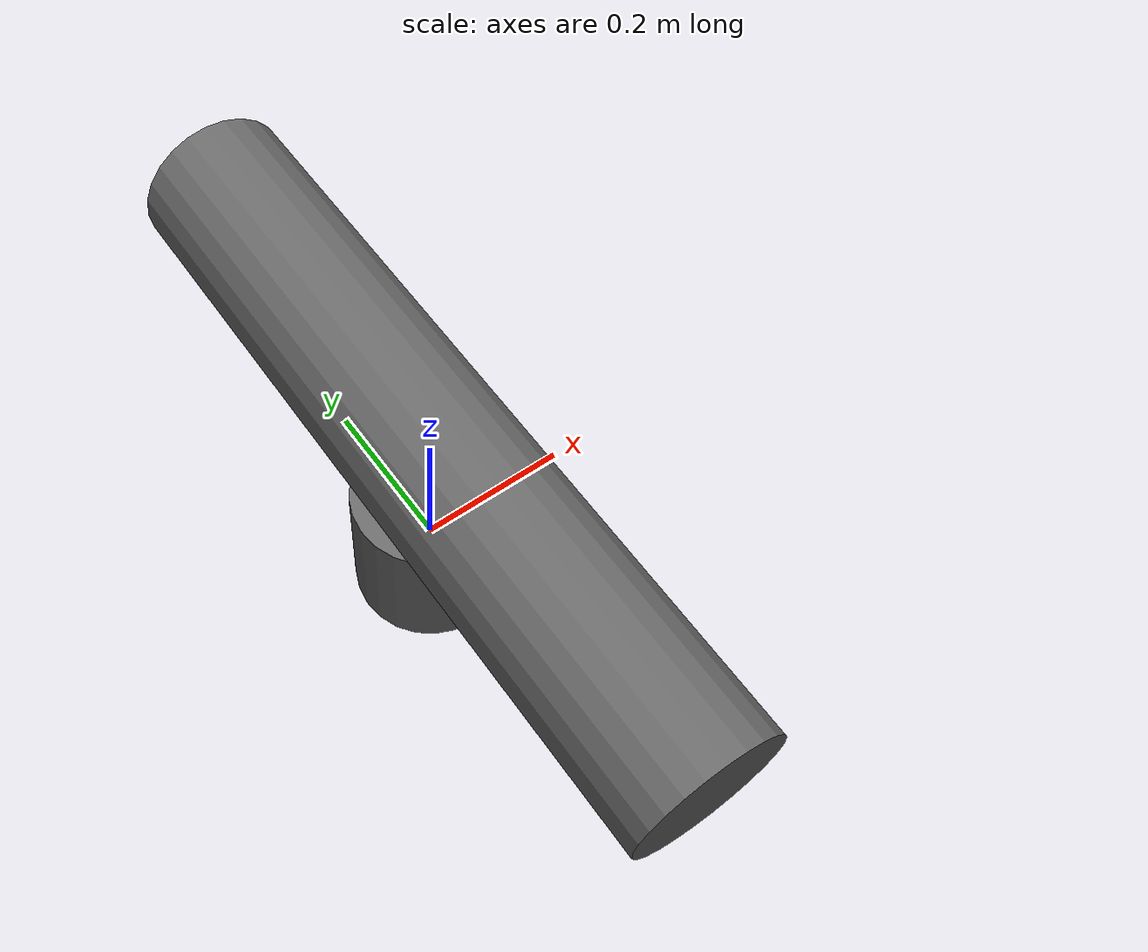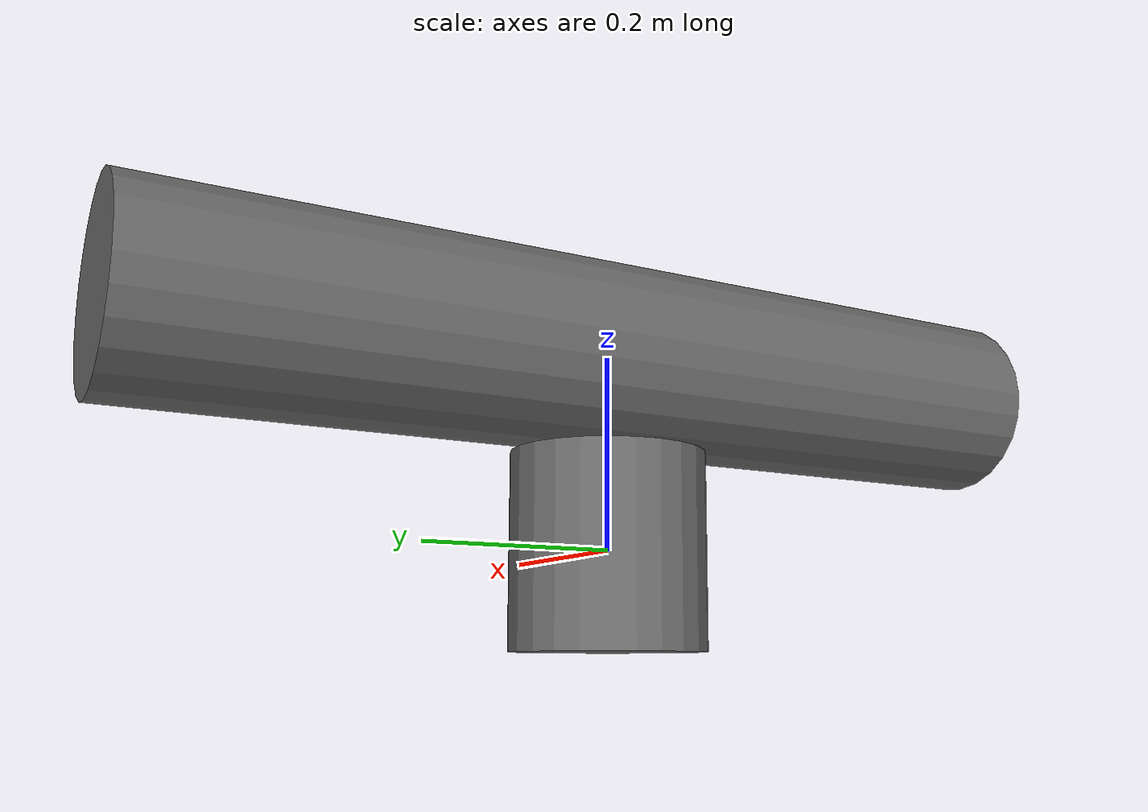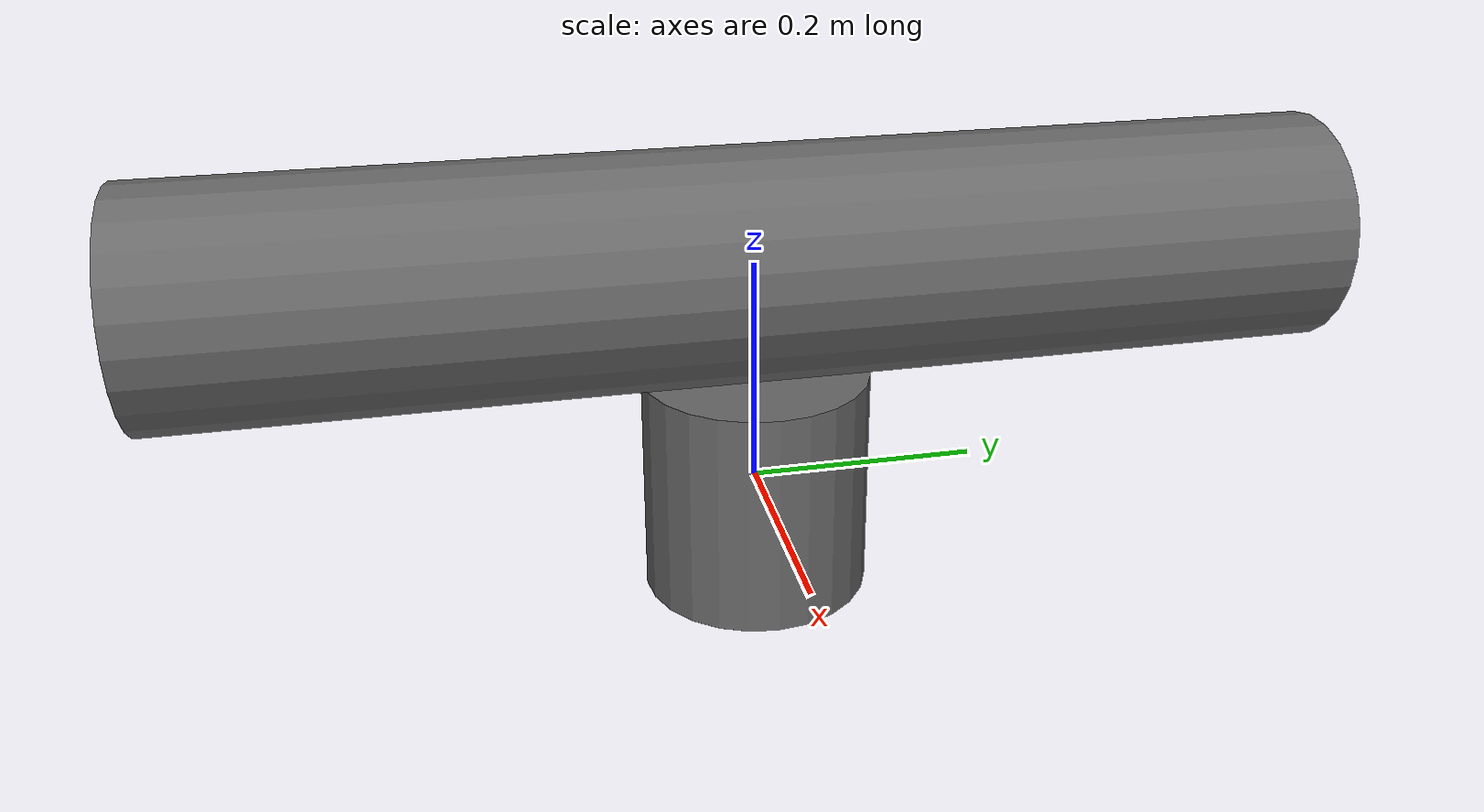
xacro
<?xml version="1.0"?>
<robot name="test" xmlns:xacro="http://www.ros.org/wiki/xacro">
    <link name="world"/>
    <joint name="base_joint" type="fixed">
      <origin rpy="0 0 0" xyz="0 0 0"/>
      <parent link="world"/>
      <child link="base_link"/>
    </joint>
    <link name="base_link">
      <inertial>
        <mass value="0.01"/>
        <origin xyz="0 0 0"/>
        <inertia ixx="0.001" ixy="0.0" ixz="0.0" iyy="0.001" iyz="0.0" izz="0.001"/>
      </inertial>
      <visual>
        <origin rpy="0 0 0" xyz="0 0 0"/>
        <geometry>
          <cylinder length="0.2" radius="0.1"/>
        </geometry>
        <material name="DarkGrey">
          <color rgba="0.4 0.4 0.4 1.0"/>
        </material>
      </visual>
      <collision>
        <origin rpy="0 0 0" xyz="0 0 0"/>
        <geometry>
          <cylinder length="1" radius="0.1"/>
        </geometry>
      </collision>
    </link>
    <joint name="test_joint" type="revolute">
      <origin rpy="-1.57079632679 0 0" xyz="0 0 0.2"/>
      <parent link="base_link"/>
      <child link="link1"/>
      <limit effort="0.1" lower="-3.14159265359" upper="3.14159265359" velocity="0.2"/>
    </joint>
    <link name="link1">
      <inertial>
        <mass value="0.01"/>
        <origin xyz="0 0 0"/>
        <inertia ixx="0.001" ixy="0.0" ixz="0.0" iyy="0.001" iyz="0.0" izz="0.001"/>
      </inertial>
      <visual>
        <origin rpy="0 0 0" xyz="0 0 0"/>
        <geometry>
          <cylinder length="1" radius="0.1"/>
        </geometry>
        <material name="DarkGrey">
          <color rgba="0.4 0.4 0.4 1.0"/>
        </material>
      </visual>
      <collision>
        <origin rpy="0 0 0" xyz="0 0 0"/>
        <geometry>
          <cylinder length="1" radius="0.1"/>
        </geometry>
      </collision>
    </link>

    <ros2_control name="test_amc_motor_actuator" type="actuator">
        <hardware>
            <plugin>amc_motor_actuator</plugin>
        </hardware>
        <joint name="test_joint">
            <command_interface name="position">
                <param name="min">-100</param>
                <param name="max">100</param>
            </command_interface>
            <command_interface name="velocity"/>
            <command_interface name="acceleration"/>
            <command_interface name="control_state"/>
            <state_interface name="position"/>
            <state_interface name="velocity"/>
            <param name="can_id">1</param>
            <param name="axis">1</param>
            <param name="path">""</param>
            <param name="homing">0</param>
            <param name="position_control">true</param>
            <param name="travel_per_revolution">0.001066667</param>
            <param name="motor_gear_ratio">1.0</param>
            <param name="default_max_velocity">800.0</param>
            <param name="default_max_accleration">8.0</param>
        </joint>
    </ros2_control>
</robot>
